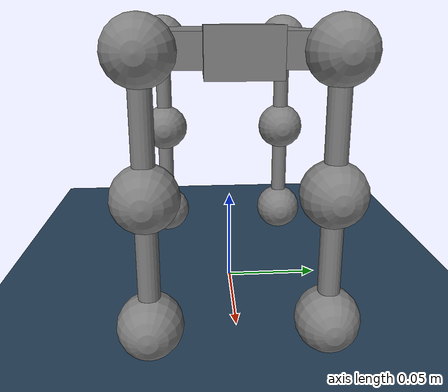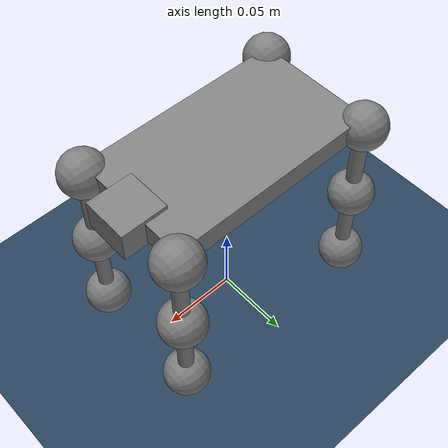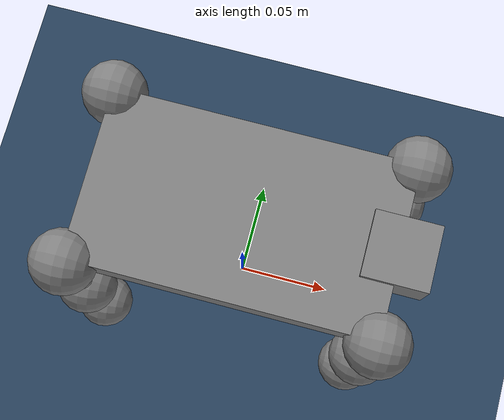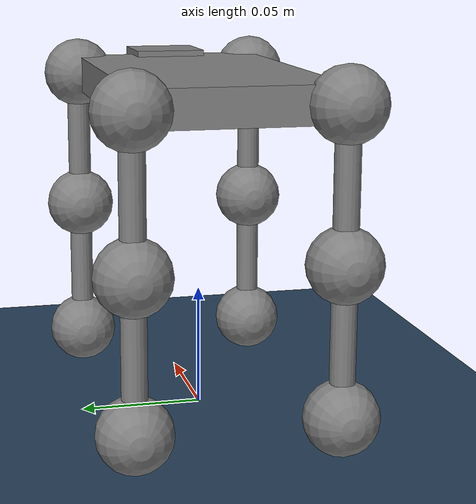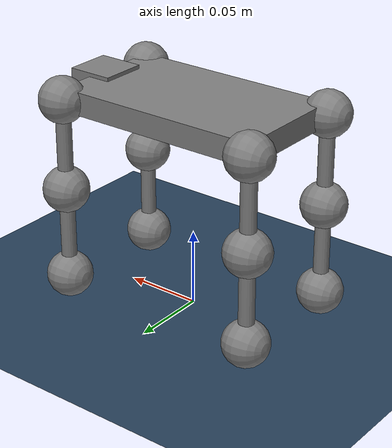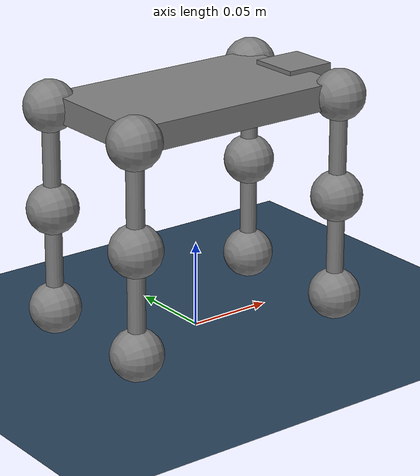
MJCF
<!-- Compatible with both Mujoco and Mujoco MJX. Replaces all cylinder geoms with spheres.
- Introduced mass on thigh, shank, wheel.
- Contacts turned off except feet.
-->

<mujoco model="anymal_c">
  <compiler angle="radian" autolimits="true"/>
  <option timestep="0.002" iterations="5" ls_iterations="6" solver="Newton"/>
  <option cone="pyramidal"/>

  <visual>
    <headlight diffuse="0.6 0.6 0.6" ambient="0.3 0.3 0.3" specular="0 0 0"/>
    <rgba haze="0.15 0.25 0.35 1"/>
    <global azimuth="120" elevation="-20"/>
  </visual>

  <default>
    <default class="general">
      <joint damping="0.1"/>
      <geom priority="1" condim="3" friction="0.8 0.02 0.01" contype="8" conaffinity="4"/>
      <default class="collision">
        <geom/>
      </default>
      <!-- main leg bodies  -->
      <!-- default pos and quats: no offset, no rotation. No self-collision. -->
      <default class="thigh">
        <geom priority="1" condim="3" friction="0.8 0.02 0.01" type="capsule" size="0.005" fromto="0 0 0 0.06 0 0" mass="0.03"/>
      </default>
      <default class="shank">
        <geom priority="1" condim="3" friction="0.8 0.02 0.01" type="capsule" size="0.005" fromto="0 0 0 0.06 0 0" mass="0.03"/>
      </default>
      <default class="wheel">
        <geom priority="1" condim="3" friction="0.8 0.02 0.01" size="0.015" type="sphere" contype="1" conaffinity="0" mass="0.03"/>
      </default>

      <!-- main leg joints  -->
      <default class="hip_joint">
        <joint axis="0 -1 0" range="-3.14 3.14"/>
      </default>
      <default class="knee_joint">
        <joint axis="0 -1 0" range="-3.14 3.14"/>
      </default>
      <default class="wheel_joint">
        <joint axis="0 -1 0"/>
      </default>

      <!-- motors -->
      <default class="servo_motor">
        <geom mass="0.05" type="sphere" size="0.015"/>
      </default>

      <!-- dc motor; assume point mass (to hide it) -->
      <default class="dc_motor">
        <geom mass="0.05" type="sphere" size="0.001"/>
      </default>

      <!-- motor actuation specs. -->
      <default class="position">
        <position kp="1" ctrlrange="-3.14 3.14" forcerange="-1 1"/>
      </default>
      <default class="affine">
        <motor gear="1" forcerange="-1 1" ctrlrange="-4 4"/>
      </default>

    </default>
  </default>

<!-- visual stuff -->
  <asset>
    <!-- Skybox makes the sky light blue rather than black. Groundplane makes an infinite ground area. -->
    <texture type="skybox" builtin="gradient" rgb1="0.3 0.5 0.7" rgb2="0 0 0" width="512" height="3072"/>
    <texture type="2d" name="groundplane" builtin="checker" mark="edge" rgb1="0.2 0.3 0.4" rgb2="0.1 0.2 0.3"
      markrgb="0.8 0.8 0.8" width="300" height="300"/>
    <material name="groundplane" texture="groundplane" texuniform="true" texrepeat="5 5" reflectance="0.2"/>
  </asset>

  <worldbody>
    <geom name="floor" size="0 0 0.05" type="plane" conaffinity="1" material="groundplane"/>
    <!-- This light uniformly lights the entire environment. -->
    <light pos="0 0 1.5" dir="0 0 -1" directional="true"/>

    <body name="base" pos="0 0 0.135" quat="1 0 0 0" childclass="general">
      <camera name="base" pos="0 -0.5 0.2" xyaxes="1 0 0 0 1 2" mode="targetbodycom"/>
      <freejoint/>
      <geom class="collision" pos="0 0 0" quat="1 0 0 0" type="box" size="0.07 0.04 0.0075" mass="0.2"/>

      <!-- Head; no inertial properties. No joint specified = fixed. -->
      <body name="head" pos="0.07 0 0">
        <geom class="collision" type="box" size="0.015 0.015 0.01"/>
      </body>

      <!-- HIP (massless; just a transform to make 0 degrees point vertically down.)-->
      <body name="RF_HIP" pos="0.07 0.04 0" quat="0.707107 0 0.707107 0">

        <!-- THIGH (attached to hip) -->
        <body pos="0 0 0">
          <joint name="RF_HJ" class="hip_joint"/>
          <geom class="servo_motor"/>
          <geom class="thigh"/>

          <!-- KNEE -->
          <body pos="0.06 0 0">
            <joint name="RF_KJ" class="knee_joint"/>
            <geom class="servo_motor"/>
            <geom class="shank"/>

            <!-- WHEEL (rotate so +'ve moves you forwards) -->
            <body pos="0.06 0 0" quat="0 1 0 0">
                <geom class="dc_motor"/>
                <geom class="wheel"/>
            </body>
          </body>
        </body>
      </body>

      <!-- HIP -->
      <body name="LF_HIP" pos="0.07 -0.04 0" quat="0.707107 0 0.707107 0">

        <!-- THIGH -->
        <body pos="0 0 0">
          <joint class="hip_joint" name="LF_HJ"/>
          <geom class="servo_motor"/>
          <geom class="thigh"/>

          <!-- KNEE -->
          <body pos="0.06 0 0">
            <joint name="LF_KJ" class="knee_joint"/>
            <geom class="servo_motor"/>
            <geom class="shank"/>

            <!-- WHEEL -->
            <body pos="0.06 0 0" quat="0 1 0 0">
                <geom class="dc_motor"/>
                <geom class="wheel"/>
            </body>
          </body>
        </body>
      </body>

      <!-- HIP -->
      <body name="RH_HIP" pos="-0.07 0.04 0" quat="0.707107 0 0.707107 0">

        <!-- THIGH -->
        <body pos="0 0 0">
          <joint class="hip_joint" name="RH_HJ"/>
          <geom class="servo_motor"/>
          <geom class="thigh"/>

          <!-- KNEE -->
          <body pos="0.06 0 0">
            <joint name="RH_KJ" class="knee_joint"/>
            <geom class="servo_motor"/>
            <geom class="shank"/>

            <!-- WHEEL -->
            <body pos="0.06 0 0" quat="0 1 0 0">
                <geom class="dc_motor"/>
                <geom class="wheel"/>
            </body>
          </body>
        </body>
      </body>

      <!-- HIP -->
      <body name="LH_HIP" pos="-0.07 -0.04 0" quat="0.707107 0 0.707107 0">

        <!-- THIGH -->
        <body pos="0 0 0">
          <joint class="hip_joint" name="LH_HJ"/>
          <geom class="servo_motor"/>
          <geom class="thigh"/>

          <!-- KNEE -->
          <body pos="0.06 0 0">
            <joint name="LH_KJ" class="knee_joint"/>
            <geom class="servo_motor"/>
            <geom class="shank"/>

            <!-- WHEEL -->
            <body pos="0.06 0 0" quat="0 1 0 0">
                <geom class="dc_motor"/>
                <geom class="wheel"/>
            </body>

          </body>
        </body>
      </body>

    </body>
  </worldbody>

  <actuator>
    <position class="position" joint="RF_HJ"/>
    <position class="position" joint="RF_KJ"/>
    <position class="position" joint="LF_HJ"/>
    <position class="position" joint="LF_KJ"/>
    <position class="position" joint="RH_HJ"/>
    <position class="position" joint="RH_KJ"/>
    <position class="position" joint="LH_HJ"/>
    <position class="position" joint="LH_KJ"/>

  </actuator>

  <keyframe>
    <key name="standing" qpos="0.0 0.0 0.135 1.0 0.0 0.0 0.0 -0.7854 1.5708 -0.7854 1.5708 -0.7854 1.5708 -0.7854 1.5708" ctrl="-0.7854 1.5708 -0.7854 1.5708 -0.7854 1.5708 -0.7854 1.5708"/>
  </keyframe>

</mujoco>
